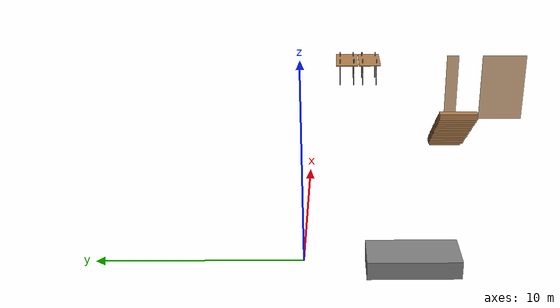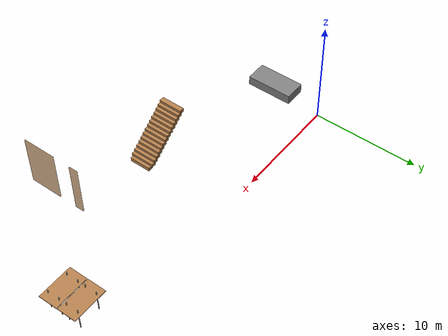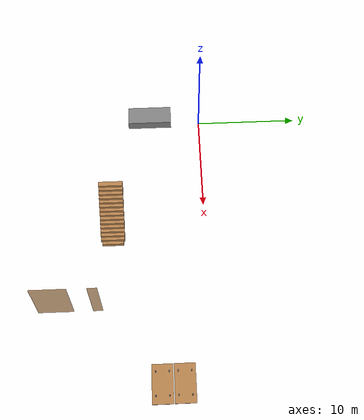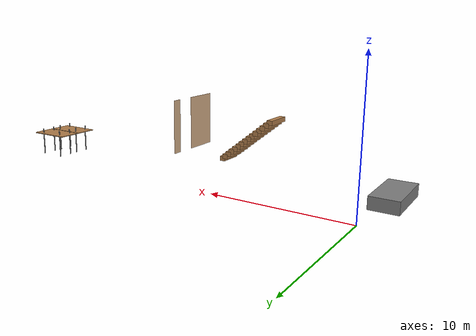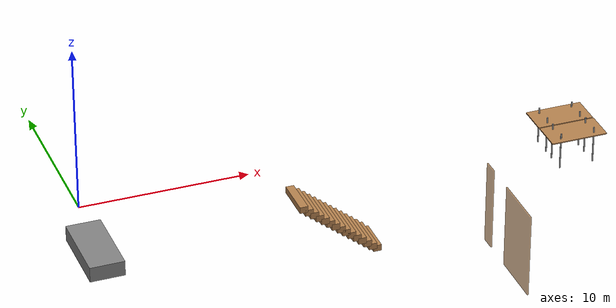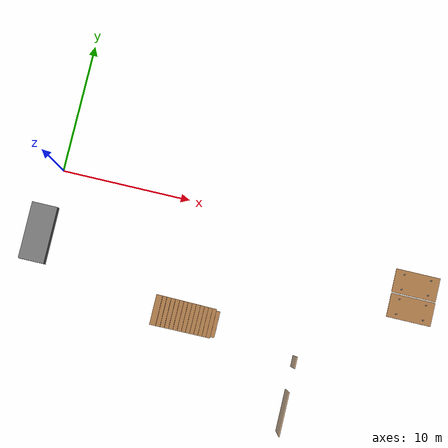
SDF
<sdf version="1.6">
 <world name="husarion_office">
  <physics name="1ms" type="ignored">
   <max_step_size>0.001</max_step_size>
   <real_time_factor>1.0</real_time_factor>
  </physics>
  <plugin filename="ignition-gazebo-contact-system" name="ignition::gazebo::systems::Contact"/>
  <plugin filename="libignition-gazebo-imu-system.so" name="ignition::gazebo::systems::Imu"/>
  <plugin filename="ignition-gazebo-physics-system" name="ignition::gazebo::systems::Physics"/>
  <plugin filename="ignition-gazebo-scene-broadcaster-system" name="ignition::gazebo::systems::SceneBroadcaster"/>
  <plugin name="ignition::gazebo::systems::UserCommands" filename="ignition-gazebo-user-commands-system"/>
  <plugin filename="libignition-gazebo-joint-state-publisher-system.so" name="ignition::gazebo::systems::JointStatePublisher"/>
  <plugin filename="libignition-gazebo-triggered-publisher-system.so" name="ignition::gazebo::systems::TriggeredPublisher">
   <input type="ignition.msgs.Int32" topic="/keyboard/keypress"><match field="data">16777235</match></input>
   <output type="ignition.msgs.Twist" topic="/cmd_vel">linear: {x: 0.5}, angular: {z: 0.0}</output>
  </plugin>
  <plugin filename="libignition-gazebo-triggered-publisher-system.so" name="ignition::gazebo::systems::TriggeredPublisher">
   <input type="ignition.msgs.Int32" topic="/keyboard/keypress"><match field="data">16777237</match></input>
   <output type="ignition.msgs.Twist" topic="/cmd_vel">linear: {x: -0.5}, angular: {z: 0.0}</output>
  </plugin>
  <plugin filename="libignition-gazebo-triggered-publisher-system.so" name="ignition::gazebo::systems::TriggeredPublisher">
   <input type="ignition.msgs.Int32" topic="/keyboard/keypress"><match field="data">16777236</match></input>
   <output type="ignition.msgs.Twist" topic="/cmd_vel">linear: {x: 0.0}, angular: {z: -0.5}</output>
  </plugin>
  <plugin filename="libignition-gazebo-triggered-publisher-system.so" name="ignition::gazebo::systems::TriggeredPublisher">
   <input type="ignition.msgs.Int32" topic="/keyboard/keypress"><match field="data">16777234</match></input>
   <output type="ignition.msgs.Twist" topic="/cmd_vel">linear: {x: 0.0}, angular: {z: 0.5}</output>
  </plugin>
  <plugin filename="libignition-gazebo-sensors-system.so" name="ignition::gazebo::systems::Sensors">
   <render_engine>ogre2</render_engine>
  </plugin>
  <spherical_coordinates>
   <surface_model>EARTH_WGS84</surface_model>
   <world_frame_orientation>ENU</world_frame_orientation>
   <latitude_deg>50.088280</latitude_deg>
   <longitude_deg>19.938931</longitude_deg>
   <elevation>0</elevation>
   <heading_deg>0</heading_deg>
  </spherical_coordinates>
  <scene>
   <ambient>0.8 0.8 0.8 1</ambient>
   <background>0 0 0 1</background>
   <grid>0</grid>
   <shadows>1</shadows>
  </scene>
  <light name="sun" type="directional">
   <pose>0 0 15 0 -0 0</pose>
   <diffuse>0.8 0.8 0.8 1</diffuse>
   <specular>0.2 0.2 0.2 1</specular>
   <attenuation>
    <range>1000</range>
    <constant>0.9</constant>
    <linear>0.01</linear>
    <quadratic>0.001</quadratic>
   </attenuation>
   <direction>-0.5 0.1 -0.9</direction>
   <spot><inner_angle>0</inner_angle><outer_angle>0</outer_angle><falloff>0</falloff></spot>
  </light>
  <model name="OpenRobotics/Table">
   <static>1</static>
   <link name="link">
    <collision name="surface">
     <pose>0 0 1.5 0 -0 0</pose>
     <geometry><box><size>3.375 1.8 0.0675</size></box></geometry>
     <surface><friction><ode><mu>0.6</mu><mu2>0.6</mu2></ode></friction></surface>
    </collision>
    <visual name="visual1">
     <pose>0 0 1.5 0 -0 0</pose>
     <geometry><box><size>3.375 1.8 0.0675</size></box></geometry>
     <material>
      <diffuse>1 1 1 1</diffuse>
      <script><uri>file://media/materials/scripts/gazebo.material</uri><name>Gazebo/Wood</name></script>
      <pbr>
       <metal>
        <albedo_map>https://fuel.gazebosim.org/1.0/openrobotics/models/table/3/files/Table_Diffuse.jpg</albedo_map>
       </metal>
      </pbr>
     </material>
    </visual>
    <collision name="front_left_leg">
     <pose>1.02 0.57 0.75 0 -0 0</pose>
     <geometry><cylinder><radius>0.045</radius><length>2.25</length></cylinder></geometry>
    </collision>
    <visual name="front_left_leg">
     <pose>1.02 0.57 0.75 0 -0 0</pose>
     <geometry><cylinder><radius>0.045</radius><length>2.25</length></cylinder></geometry>
     <material>
      <diffuse>0.5 0.5 0.5 1</diffuse>
      <script><uri>file://media/materials/scripts/gazebo.material</uri><name>Gazebo/Grey</name></script>
     </material>
    </visual>
    <collision name="front_right_leg">
     <pose>1.02 -0.57 0.75 0 -0 0</pose>
     <geometry><cylinder><radius>0.045</radius><length>2.25</length></cylinder></geometry>
    </collision>
    <visual name="front_right_leg">
     <pose>1.02 -0.57 0.75 0 -0 0</pose>
     <geometry><cylinder><radius>0.045</radius><length>2.25</length></cylinder></geometry>
     <material>
      <diffuse>0.5 0.5 0.5 1</diffuse>
      <script><uri>file://media/materials/scripts/gazebo.material</uri><name>Gazebo/Grey</name></script>
     </material>
    </visual>
    <collision name="back_right_leg">
     <pose>-1.02 -0.57 0.75 0 -0 0</pose>
     <geometry><cylinder><radius>0.045</radius><length>2.25</length></cylinder></geometry>
    </collision>
    <visual name="back_right_leg">
     <pose>-1.02 -0.57 0.75 0 -0 0</pose>
     <geometry><cylinder><radius>0.045</radius><length>2.25</length></cylinder></geometry>
     <material>
      <diffuse>0.5 0.5 0.5 1</diffuse>
      <script><uri>file://media/materials/scripts/gazebo.material</uri><name>Gazebo/Grey</name></script>
     </material>
    </visual>
    <collision name="back_left_leg">
     <pose>-1.02 0.57 0.75 0 -0 0</pose>
     <geometry><cylinder><radius>0.045</radius><length>2.25</length></cylinder></geometry>
    </collision>
    <visual name="back_left_leg">
     <pose>-1.02 0.57 0.75 0 -0 0</pose>
     <geometry><cylinder><radius>0.045</radius><length>2.25</length></cylinder></geometry>
     <material>
      <diffuse>0.5 0.5 0.5 1</diffuse>
      <script><uri>file://media/materials/scripts/gazebo.material</uri><name>Gazebo/Grey</name></script>
     </material>
    </visual>
   </link>
   <pose>28.08675 -2.475742 0 0 0 -3.14</pose>
  </model>
  <model name="OpenRobotics/Table_2">
   <static>1</static>
   <link name="link">
    <collision name="surface">
     <pose>0 0 1.5 0 -0 0</pose>
     <geometry><box><size>3.375 1.8 0.0675</size></box></geometry>
     <surface><friction><ode><mu>0.6</mu><mu2>0.6</mu2></ode></friction></surface>
    </collision>
    <visual name="visual1">
     <pose>0 0 1.5 0 -0 0</pose>
     <geometry><box><size>3.375 1.8 0.0675</size></box></geometry>
     <material>
      <diffuse>1 1 1 1</diffuse>
      <script><uri>file://media/materials/scripts/gazebo.material</uri><name>Gazebo/Wood</name></script>
      <pbr>
       <metal>
        <albedo_map>https://fuel.gazebosim.org/1.0/openrobotics/models/table/3/files/Table_Diffuse.jpg</albedo_map>
       </metal>
      </pbr>
     </material>
    </visual>
    <collision name="front_left_leg">
     <pose>1.02 0.57 0.75 0 -0 0</pose>
     <geometry><cylinder><radius>0.045</radius><length>2.25</length></cylinder></geometry>
    </collision>
    <visual name="front_left_leg">
     <pose>1.02 0.57 0.75 0 -0 0</pose>
     <geometry><cylinder><radius>0.045</radius><length>2.25</length></cylinder></geometry>
     <material>
      <diffuse>0.5 0.5 0.5 1</diffuse>
      <script><uri>file://media/materials/scripts/gazebo.material</uri><name>Gazebo/Grey</name></script>
     </material>
    </visual>
    <collision name="front_right_leg">
     <pose>1.02 -0.57 0.75 0 -0 0</pose>
     <geometry><cylinder><radius>0.045</radius><length>2.25</length></cylinder></geometry>
    </collision>
    <visual name="front_right_leg">
     <pose>1.02 -0.57 0.75 0 -0 0</pose>
     <geometry><cylinder><radius>0.045</radius><length>2.25</length></cylinder></geometry>
     <material>
      <diffuse>0.5 0.5 0.5 1</diffuse>
      <script><uri>file://media/materials/scripts/gazebo.material</uri><name>Gazebo/Grey</name></script>
     </material>
    </visual>
    <collision name="back_right_leg">
     <pose>-1.02 -0.57 0.75 0 -0 0</pose>
     <geometry><cylinder><radius>0.045</radius><length>2.25</length></cylinder></geometry>
    </collision>
    <visual name="back_right_leg">
     <pose>-1.02 -0.57 0.75 0 -0 0</pose>
     <geometry><cylinder><radius>0.045</radius><length>2.25</length></cylinder></geometry>
     <material>
      <diffuse>0.5 0.5 0.5 1</diffuse>
      <script><uri>file://media/materials/scripts/gazebo.material</uri><name>Gazebo/Grey</name></script>
     </material>
    </visual>
    <collision name="back_left_leg">
     <pose>-1.02 0.57 0.75 0 -0 0</pose>
     <geometry><cylinder><radius>0.045</radius><length>2.25</length></cylinder></geometry>
    </collision>
    <visual name="back_left_leg">
     <pose>-1.02 0.57 0.75 0 -0 0</pose>
     <geometry><cylinder><radius>0.045</radius><length>2.25</length></cylinder></geometry>
     <material>
      <diffuse>0.5 0.5 0.5 1</diffuse>
      <script><uri>file://media/materials/scripts/gazebo.material</uri><name>Gazebo/Grey</name></script>
     </material>
    </visual>
   </link>
   <pose>28.103175 -4.360365 0 0 0 -3.139</pose>
  </model>
  <model name="Stairs">
   <pose>7.57557 -4.74624 0 0 -0 0</pose>
   <link name="Stairs_1">
    <visual name="Stairs_1_Visual_0">
     <pose>6.445725 -4.04172 0.125 0 -0 -1.5708</pose>
     <geometry><box><size>2.025 0.462036 0.375001</size></box></geometry>
     <material>
      <script><uri>file://media/materials/scripts/gazebo.material</uri><name>Gazebo/Wood</name></script>
      <ambient>1 1 1 1</ambient>
     </material>
     <meta><layer>0</layer></meta>
    </visual>
    <collision name="Stairs_1_Collision_0">
     <geometry><box><size>2.25 0.462036 0.375001</size></box></geometry>
     <pose>6.445725 -4.04172 0.125 0 -0 -1.5708</pose>
    </collision>
    <visual name="Stairs_1_Visual_1">
     <pose>6.1377 -4.04172 0.375 0 -0 -1.5708</pose>
     <geometry><box><size>2.25 0.462036 0.375001</size></box></geometry>
     <material>
      <script><uri>file://media/materials/scripts/gazebo.material</uri><name>Gazebo/Wood</name></script>
      <ambient>1 1 1 1</ambient>
     </material>
     <meta><layer>0</layer></meta>
    </visual>
    <collision name="Stairs_1_Collision_1">
     <geometry><box><size>2.25 0.462036 0.375001</size></box></geometry>
     <pose>6.1377 -4.04172 0.375 0 -0 -1.5708</pose>
    </collision>
    <visual name="Stairs_1_Visual_2">
     <pose>5.829675 -4.04172 0.625001 0 -0 -1.5708</pose>
     <geometry><box><size>2.25 0.462036 0.375001</size></box></geometry>
     <material>
      <script><uri>file://media/materials/scripts/gazebo.material</uri><name>Gazebo/Wood</name></script>
      <ambient>1 1 1 1</ambient>
     </material>
     <meta><layer>0</layer></meta>
    </visual>
    <collision name="Stairs_1_Collision_2">
     <geometry><box><size>2.25 0.462036 0.375001</size></box></geometry>
     <pose>5.829675 -4.04172 0.625001 0 -0 -1.5708</pose>
    </collision>
    <visual name="Stairs_1_Visual_3">
     <pose>5.52165 -4.04172 0.874999 0 -0 -1.5708</pose>
     <geometry><box><size>2.25 0.462036 0.375001</size></box></geometry>
     <material>
      <script><uri>file://media/materials/scripts/gazebo.material</uri><name>Gazebo/Wood</name></script>
      <ambient>1 1 1 1</ambient>
     </material>
     <meta><layer>0</layer></meta>
    </visual>
    <collision name="Stairs_1_Collision_3">
     <geometry><box><size>2.25 0.462036 0.375001</size></box></geometry>
     <pose>5.52165 -4.04172 0.874999 0 -0 -1.5708</pose>
    </collision>
    <visual name="Stairs_1_Visual_4">
     <pose>5.213625 -4.04172 1.125 0 -0 -1.5708</pose>
     <geometry><box><size>2.25 0.462036 0.375001</size></box></geometry>
     <material>
      <script><uri>file://media/materials/scripts/gazebo.material</uri><name>Gazebo/Wood</name></script>
      <ambient>1 1 1 1</ambient>
     </material>
     <meta><layer>0</layer></meta>
    </visual>
    <collision name="Stairs_1_Collision_4">
     <geometry><box><size>2.25 0.462036 0.375001</size></box></geometry>
     <pose>5.213625 -4.04172 1.125 0 -0 -1.5708</pose>
    </collision>
    <visual name="Stairs_1_Visual_5">
     <pose>4.9056 -4.04172 1.375001 0 -0 -1.5708</pose>
     <geometry><box><size>2.25 0.462036 0.375001</size></box></geometry>
     <material>
      <script><uri>file://media/materials/scripts/gazebo.material</uri><name>Gazebo/Wood</name></script>
      <ambient>1 1 1 1</ambient>
     </material>
     <meta><layer>0</layer></meta>
    </visual>
    <collision name="Stairs_1_Collision_5">
     <geometry><box><size>2.25 0.462036 0.375001</size></box></geometry>
     <pose>4.9056 -4.04172 1.375001 0 -0 -1.5708</pose>
    </collision>
    <visual name="Stairs_1_Visual_6">
     <pose>4.597575 -4.04172 1.624995 0 -0 -1.5708</pose>
     <geometry><box><size>2.25 0.462036 0.375001</size></box></geometry>
     <material>
      <script><uri>file://media/materials/scripts/gazebo.material</uri><name>Gazebo/Wood</name></script>
      <ambient>1 1 1 1</ambient>
     </material>
     <meta><layer>0</layer></meta>
    </visual>
    <collision name="Stairs_1_Collision_6">
     <geometry><box><size>2.25 0.462036 0.375001</size></box></geometry>
     <pose>4.597575 -4.04172 1.624995 0 -0 -1.5708</pose>
    </collision>
    <visual name="Stairs_1_Visual_7">
     <pose>4.28955 -4.04172 1.875 0 -0 -1.5708</pose>
     <geometry><box><size>2.25 0.462036 0.375001</size></box></geometry>
     <material>
      <script><uri>file://media/materials/scripts/gazebo.material</uri><name>Gazebo/Wood</name></script>
      <ambient>1 1 1 1</ambient>
     </material>
     <meta><layer>0</layer></meta>
    </visual>
    <collision name="Stairs_1_Collision_7">
     <geometry><box><size>2.25 0.462036 0.375001</size></box></geometry>
     <pose>4.28955 -4.04172 1.875 0 -0 -1.5708</pose>
    </collision>
    <visual name="Stairs_1_Visual_8">
     <pose>3.981525 -4.04172 2.125005 0 -0 -1.5708</pose>
     <geometry><box><size>2.25 0.462036 0.375001</size></box></geometry>
     <material>
      <script><uri>file://media/materials/scripts/gazebo.material</uri><name>Gazebo/Wood</name></script>
      <ambient>1 1 1 1</ambient>
     </material>
     <meta><layer>0</layer></meta>
    </visual>
    <collision name="Stairs_1_Collision_8">
     <geometry><box><size>2.25 0.462036 0.375001</size></box></geometry>
     <pose>3.981525 -4.04172 2.125005 0 -0 -1.5708</pose>
    </collision>
    <visual name="Stairs_1_Visual_9">
     <pose>3.6735 -4.04172 2.374995 0 -0 -1.5708</pose>
     <geometry><box><size>2.25 0.462036 0.375001</size></box></geometry>
     <material>
      <script><uri>file://media/materials/scripts/gazebo.material</uri><name>Gazebo/Wood</name></script>
      <ambient>1 1 1 1</ambient>
     </material>
     <meta><layer>0</layer></meta>
    </visual>
    <collision name="Stairs_1_Collision_9">
     <geometry><box><size>2.25 0.462036 0.375001</size></box></geometry>
     <pose>3.6735 -4.04172 2.374995 0 -0 -1.5708</pose>
    </collision>
    <visual name="Stairs_1_Visual_10">
     <pose>3.365475 -4.04172 2.625 0 -0 -1.5708</pose>
     <geometry><box><size>2.25 0.462036 0.375001</size></box></geometry>
     <material>
      <script><uri>file://media/materials/scripts/gazebo.material</uri><name>Gazebo/Wood</name></script>
      <ambient>1 1 1 1</ambient>
     </material>
     <meta><layer>0</layer></meta>
    </visual>
    <collision name="Stairs_1_Collision_10">
     <geometry><box><size>2.25 0.462036 0.375001</size></box></geometry>
     <pose>3.365475 -4.04172 2.625 0 -0 -1.5708</pose>
    </collision>
    <visual name="Stairs_1_Visual_11">
     <pose>3.05745 -4.04172 2.875005 0 -0 -1.5708</pose>
     <geometry><box><size>2.25 0.462036 0.375001</size></box></geometry>
     <material>
      <script><uri>file://media/materials/scripts/gazebo.material</uri><name>Gazebo/Wood</name></script>
      <ambient>1 1 1 1</ambient>
     </material>
     <meta><layer>0</layer></meta>
    </visual>
    <collision name="Stairs_1_Collision_11">
     <geometry><box><size>2.25 0.462036 0.375001</size></box></geometry>
     <pose>3.05745 -4.04172 2.875005 0 -0 -1.5708</pose>
    </collision>
    <visual name="Stairs_1_Visual_12">
     <pose>2.749425 -4.04172 3.124995 0 -0 -1.5708</pose>
     <geometry><box><size>2.25 0.462036 0.375001</size></box></geometry>
     <material>
      <script><uri>file://media/materials/scripts/gazebo.material</uri><name>Gazebo/Wood</name></script>
      <ambient>1 1 1 1</ambient>
     </material>
     <meta><layer>0</layer></meta>
    </visual>
    <collision name="Stairs_1_Collision_12">
     <geometry><box><size>2.25 0.462036 0.375001</size></box></geometry>
     <pose>2.749425 -4.04172 3.124995 0 -0 -1.5708</pose>
    </collision>
    <visual name="Stairs_1_Visual_13">
     <pose>2.441415 -4.04172 3.375 0 -0 -1.5708</pose>
     <geometry><box><size>2.25 0.462036 0.375001</size></box></geometry>
     <material>
      <script><uri>file://media/materials/scripts/gazebo.material</uri><name>Gazebo/Wood</name></script>
      <ambient>1 1 1 1</ambient>
     </material>
     <meta><layer>0</layer></meta>
    </visual>
    <collision name="Stairs_1_Collision_13">
     <geometry><box><size>2.25 0.462036 0.375001</size></box></geometry>
     <pose>2.441415 -4.04172 3.375 0 -0 -1.5708</pose>
    </collision>
    <visual name="Stairs_1_Visual_14">
     <pose>2.13339 -4.04172 3.625005 0 -0 -1.5708</pose>
     <geometry><box><size>2.25 0.462036 0.375001</size></box></geometry>
     <material>
      <script><uri>file://media/materials/scripts/gazebo.material</uri><name>Gazebo/Wood</name></script>
      <ambient>1 1 1 1</ambient>
     </material>
     <meta><layer>0</layer></meta>
    </visual>
    <collision name="Stairs_1_Collision_14">
     <geometry><box><size>2.25 0.462036 0.375001</size></box></geometry>
     <pose>2.13339 -4.04172 3.625005 0 -0 -1.5708</pose>
    </collision>
   </link>
   <static>1</static>
  </model>
  <model name="Glass_wall_1">
   <pose>20.455515 -13.953173 0 -0 -0 -1.56984</pose>
   <link name="right">
    <pose>0 0 1.665 0 -0 0</pose>
    <visual name="right_visual">
     <geometry><box><size>3.231607 0.0675 4.95</size></box></geometry>
     <material><ambient>0.5 0.25 0 0.6</ambient><diffuse>0.5 0.25 0 0.6</diffuse></material>
    </visual>
    <collision name="right_collision">
     <geometry><box><size>3.231607 0.0675 4.95</size></box></geometry>
     <surface><contact><collide_bitmask>2</collide_bitmask></contact></surface>
    </collision>
    <inertial>
     <mass>50</mass>
     <inertia><ixx>20.1704</ixx><iyy>28.762</iyy><izz>8.59904</izz><ixy>0</ixy><ixz>0</ixz><iyz>0</iyz></inertia>
    </inertial>
   </link>
   <joint name="right_joint" type="revolute">
    <parent>world</parent>
    <child>right</child>
    <axis>
     <xyz>0 0 -1</xyz>
     <limit><lower>0</lower><upper>0</upper></limit>
     <dynamics><spring_reference>0</spring_reference><spring_stiffness>0</spring_stiffness></dynamics>
    </axis>
    <pose>1.084702 0 0 0 -0 0</pose>
   </joint>
  </model>
  <model name="Glass_wall_2">
   <pose>20.451217 -10.145925 0 0 -0 1.58293</pose>
   <link name="right">
    <pose>0 0 1.665 0 -0 0</pose>
    <visual name="right_visual">
     <geometry><box><size>0.876698 0.0675 4.95</size></box></geometry>
     <material><ambient>0.5 0.25 0 0.6</ambient><diffuse>0.5 0.25 0 0.6</diffuse></material>
    </visual>
    <collision name="right_collision">
     <geometry><box><size>0.876698 0.0675 4.95</size></box></geometry>
     <surface><contact><collide_bitmask>2</collide_bitmask></contact></surface>
    </collision>
    <inertial>
     <mass>50</mass>
     <inertia><ixx>20.1704</ixx><iyy>20.7993</iyy><izz>0.636341</izz><ixy>0</ixy><ixz>0</ixz><iyz>0</iyz></inertia>
    </inertial>
   </link>
   <joint name="right_joint" type="revolute">
    <parent>world</parent>
    <child>right</child>
    <axis>
     <xyz>0 0 -1</xyz>
     <limit><lower>0</lower><upper>0</upper></limit>
     <dynamics><spring_reference>0</spring_reference><spring_stiffness>0</spring_stiffness></dynamics>
    </axis>
    <pose>0.299733 0 0 0 -0 0</pose>
   </joint>
  </model>
  <model name="Shelf_1">
   <static>1</static>
   <pose>-0.616352 -5.146763 0.45 0 0 -1.56696</pose>
   <link name="shelf_link">
    <collision name="body_collision"><geometry><box><size>4.41855 1.99755 0.9</size></box></geometry></collision>
    <visual name="body_visual">
     <material>
      <ambient>0.4 0.4 0.4 1</ambient>
      <diffuse>0.5 0.5 0.5 1</diffuse>
      <specular>0 0 0 0</specular>
      <emissive>0 0 0 1</emissive>
     </material>
     <geometry><box><size>4.41855 1.99755 0.9</size></box></geometry>
    </visual>
   </link>
  </model>
  <gravity>0 0 -9.8</gravity>
  <magnetic_field>6e-06 2.3e-05 -4.2e-05</magnetic_field>
  <atmosphere type="adiabatic"/>
  <physics type="ode">
   <max_step_size>0.001</max_step_size>
   <real_time_factor>1</real_time_factor>
   <real_time_update_rate>1000</real_time_update_rate>
  </physics>
  <spherical_coordinates>
   <surface_model>EARTH_WGS84</surface_model>
   <latitude_deg>0</latitude_deg>
   <longitude_deg>0</longitude_deg>
   <elevation>0</elevation>
   <heading_deg>0</heading_deg>
  </spherical_coordinates>
 </world>
</sdf>
